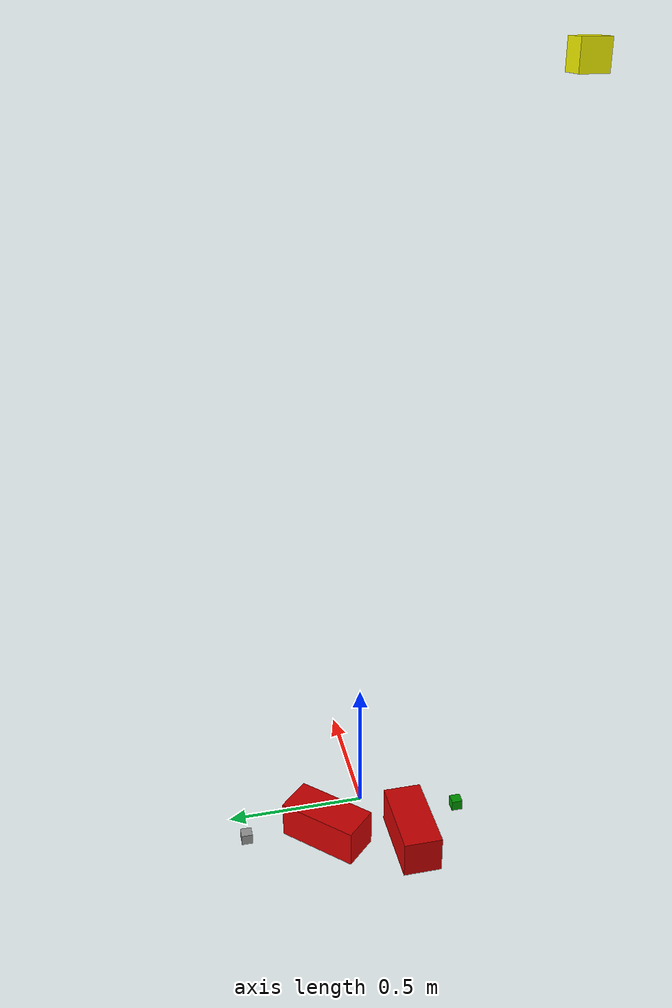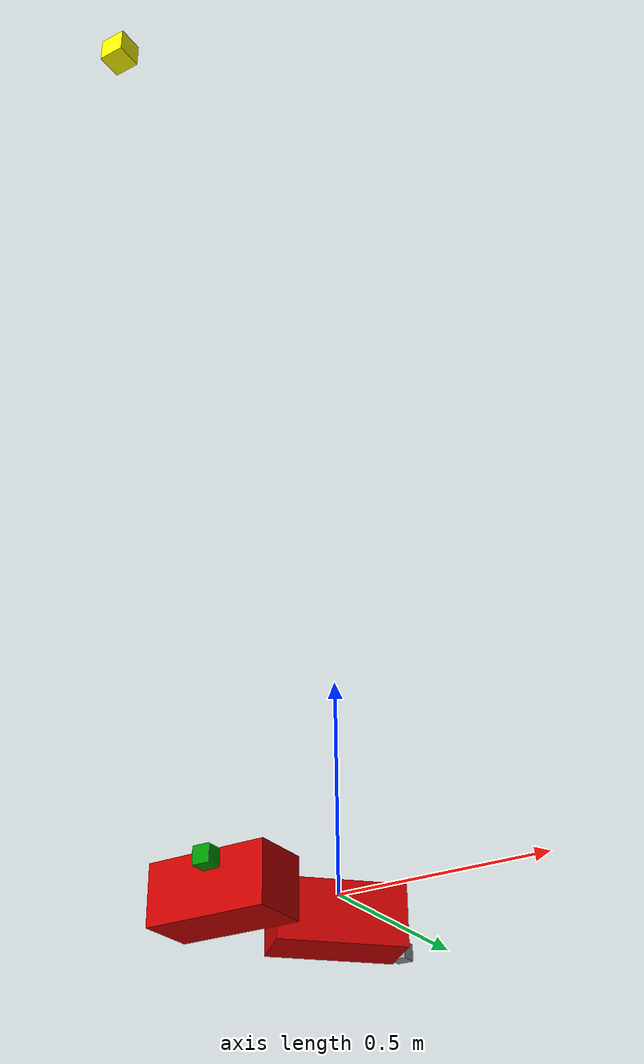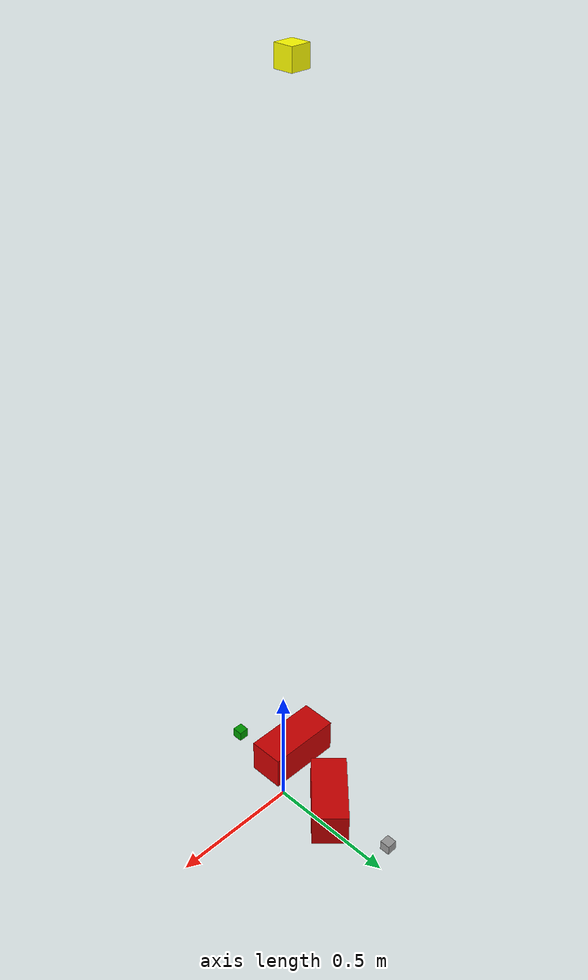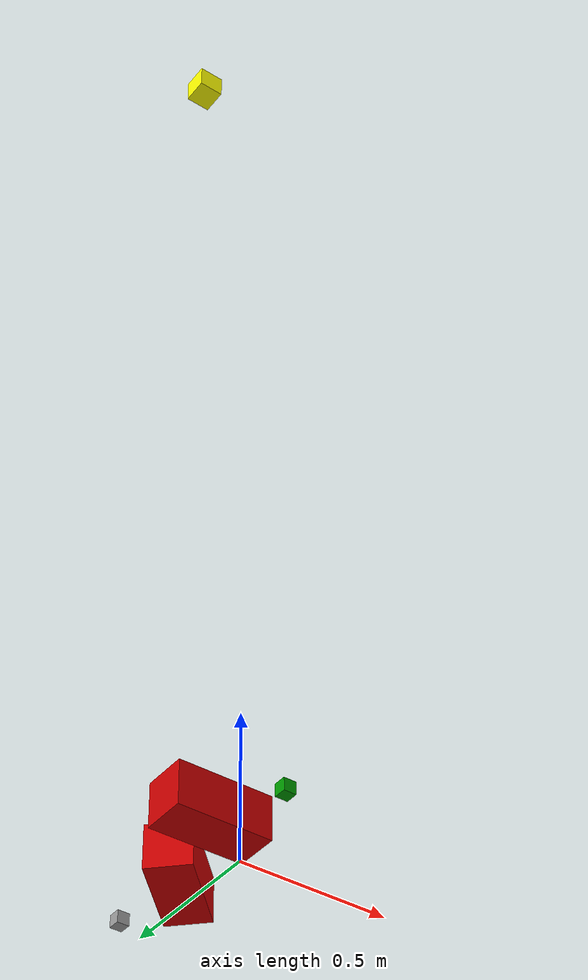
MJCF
<mujoco model="dual-panda v01">

    <!-- change this for different objects -->

    <option noslip_iterations="500" />
    <option solver="Newton" iterations="100" tolerance="1e-5"/>

    <option cone="elliptic"> </option>
    <option><flag multiccd="disable"/> </option>

    <default>
        <default class='torso'>
            <geom group='2' contype='0' conaffinity='0' rgba=".95 .99 .92 1" />
        </default>/ </default>

    <worldbody>

        <body name='torso' childclass='torso'>

            <body name='leftarm' pos='0 -0.4 0' euler='0 0 3.14'>
                <include file="franka_emika_panda/mjx_panda.xml" />
            </body>

        </body>
        <body name="object" pos="-0.4756487 -0.44454999  2.6048999" quat="0 0.7071068 0 0.7071068">
                <joint type="free" name="object_virtual_joint_10" damping="5" />
                <geom type="box" size="0.04 0.04 0.04 " rgba="1 1 0 1" friction="0.6 0.25 0.1" condim="6"/>
                <inertial pos="0 0 0" mass="0.366" diaginertia="0.000349 0.000349 0.000349"/>
        </body>

        <body name="target_0" pos="-0.1 -0.35 0.0" quat="0 0.70711 0.70711 0">
            <joint type="free" damping="0.007" name="free_joint_0" group="1"/>
            <geom name="target_0" pos="0 0 0" rgba="0 0.6 0 1" size="0.02 0.02 0.02" type="box"/>
        </body>

        <body name="target_1" pos="-0.1 0.45 0.0" quat="0 0.70711 0.70711 0">
            <geom name="target_1" pos="0 0 0" rgba="0.6 0.6 0.6 1" size="0.02 0.02 0.02" type="box" />
        </body>

        <body name="obstacle_0" pos="-0.1 0.15 0.0" quat="0.65328 -0.2706 0.65328 0.2706">
            <geom name="obstacle_0" pos="0 0 0" rgba="0.8 0 0 0" size="0.1 0.1" type="capsule" />
            <site name="obstacle_0" pos="0 0 0" rgba="0.8 0 0 1" size="0.07 0.07 0.15" type="box" />
        </body>

        <body name="obstacle_1" pos="-0.2 -0.15 0.0" quat="0.70711 0 0.70711 0">
            <geom name="obstacle_1" pos="0 0 0" rgba="0.8 0 0 0" size="0.1 0.1" type="capsule"  />
            <site name="obstacle_1" pos="0 0 0" rgba="0.8 0 0 1" size="0.07 0.07 0.15" type="box" />
        </body>

    </worldbody>

</mujoco>

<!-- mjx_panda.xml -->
<mujoco model="panda">
  <compiler angle="radian" meshdir="assets" autolimits="true"/>

  <default>
    <default class="panda">
      <material specular="0.5" shininess="0.25"/>
      <joint armature="0.1" damping="1" axis="0 0 1" range="-2.8973 2.8973"/>
      <general dyntype="none" biastype="affine" ctrlrange="-2.8973 2.8973" forcerange="-87 87"/>
      <position forcerange="-100 100"/>
      <default class="finger">
        <joint axis="0 1 0" type="slide" range="0 0.04"/>
      </default>

      <default class="visual">
        <geom type="mesh" contype="0" conaffinity="0" group="2"/>
      </default>
      <default class="collision">
        <geom group="3" type="mesh" contype="0" conaffinity="0"/>
        <default class="primitive_collision">
          <geom group="3" type="box" contype="0" conaffinity="0"
           condim="3" solimp="0.99 0.995 0.01" solref="0.01 1" friction="1 0.005 0.0001"/>
          <default class="fingertip_pad_collision_1">
            <geom type="box" size="0.011 0.0075 0.01" pos="0 0.0185 0.011"/>
          </default>
          <default class="fingertip_pad_collision_2">
            <geom type="box" size="0.011 0.0044 0.0019" pos="0 0.0068 0.0022"/>
          </default>
          <default class="fingertip_pad_collision_3">
            <geom type="box" size="0.00875 0.0035 0.01175" pos="0 0.0159 0.02835" quat="1 0.25 0 0"/>
          </default>
          <default class="fingertip_pad_collision_4">
            <geom type="box" size="0.00875 0.0076 0.00825" pos="0 0.00758 0.04525" conaffinity="3"/>
          </default>
        </default>
      </default>
    </default>
  </default>

  <asset>
    <material class="panda" name="white" rgba="1 1 1 1"/>
    <material class="panda" name="off_white" rgba="0.901961 0.921569 0.929412 1"/>
    <material class="panda" name="black" rgba="0.25 0.25 0.25 1"/>
    <material class="panda" name="green" rgba="0 1 0 1"/>
    <material class="panda" name="light_blue" rgba="0.039216 0.541176 0.780392 1"/>

    <!-- Collision meshes -->
    <mesh name="link0_c" file="link0.stl"/>
    <mesh name="link1_c" file="link1.stl"/>
    <mesh name="link2_c" file="link2.stl"/>
    <mesh name="link3_c" file="link3.stl"/>
    <mesh name="link4_c" file="link4.stl"/>
    <mesh name="link5_c0" file="link5_collision_0.obj"/>
    <mesh name="link5_c1" file="link5_collision_1.obj"/>
    <mesh name="link5_c2" file="link5_collision_2.obj"/>
    <mesh name="link6_c" file="link6.stl"/>
    <mesh name="link7_c" file="link7.stl"/>
    <mesh name="hand_c" file="hand.stl"/>

    <!-- Visual meshes -->
    <mesh file="link0_0.obj"/>
    <mesh file="link0_1.obj"/>
    <mesh file="link0_2.obj"/>
    <mesh file="link0_3.obj"/>
    <mesh file="link0_4.obj"/>
    <mesh file="link0_5.obj"/>
    <mesh file="link0_7.obj"/>
    <mesh file="link0_8.obj"/>
    <mesh file="link0_9.obj"/>
    <mesh file="link0_10.obj"/>
    <mesh file="link0_11.obj"/>
    <mesh file="link1.obj"/>
    <mesh file="link2.obj"/>
    <mesh file="link3_0.obj"/>
    <mesh file="link3_1.obj"/>
    <mesh file="link3_2.obj"/>
    <mesh file="link3_3.obj"/>
    <mesh file="link4_0.obj"/>
    <mesh file="link4_1.obj"/>
    <mesh file="link4_2.obj"/>
    <mesh file="link4_3.obj"/>
    <mesh file="link5_0.obj"/>
    <mesh file="link5_1.obj"/>
    <mesh file="link5_2.obj"/>
    <mesh file="link6_0.obj"/>
    <mesh file="link6_1.obj"/>
    <mesh file="link6_2.obj"/>
    <mesh file="link6_3.obj"/>
    <mesh file="link6_4.obj"/>
    <mesh file="link6_5.obj"/>
    <mesh file="link6_6.obj"/>
    <mesh file="link6_7.obj"/>
    <mesh file="link6_8.obj"/>
    <mesh file="link6_9.obj"/>
    <mesh file="link6_10.obj"/>
    <mesh file="link6_11.obj"/>
    <mesh file="link6_12.obj"/>
    <mesh file="link6_13.obj"/>
    <mesh file="link6_14.obj"/>
    <mesh file="link6_15.obj"/>
    <mesh file="link6_16.obj"/>
    <mesh file="link7_0.obj"/>
    <mesh file="link7_1.obj"/>
    <mesh file="link7_2.obj"/>
    <mesh file="link7_3.obj"/>
    <mesh file="link7_4.obj"/>
    <mesh file="link7_5.obj"/>
    <mesh file="link7_6.obj"/>
    <mesh file="link7_7.obj"/>
    <mesh file="hand_0.obj"/>
    <mesh file="hand_1.obj"/>
    <mesh file="hand_2.obj"/>
    <mesh file="hand_3.obj"/>
    <mesh file="hand_4.obj"/>
    <mesh file="finger_0.obj"/>
    <mesh file="finger_1.obj"/>
  </asset>

  <worldbody>
    <light name="top" pos="0 0 2" mode="trackcom"/>
    <body name="link0" childclass="panda" gravcomp="1">
      <inertial mass="0.629769" pos="-0.041018 -0.00014 0.049974"
        fullinertia="0.00315 0.00388 0.004285 8.2904e-7 0.00015 8.2299e-6" />
      <geom mesh="link0_0" material="off_white" class="visual"/>
      <geom mesh="link0_1" material="black" class="visual"/>
      <geom mesh="link0_2" material="off_white" class="visual"/>
      <geom mesh="link0_3" material="black" class="visual"/>
      <geom mesh="link0_4" material="off_white" class="visual"/>
      <geom mesh="link0_5" material="black" class="visual"/>
      <geom mesh="link0_7" material="white" class="visual"/>
      <geom mesh="link0_8" material="white" class="visual"/>
      <geom mesh="link0_9" material="black" class="visual"/>
      <geom mesh="link0_10" material="off_white" class="visual"/>
      <geom mesh="link0_11" material="white" class="visual"/>
      <geom mesh="link0_c" class="collision"/>
      <body name="link1" pos="0 0 0.333" gravcomp="1">
        <inertial mass="4.970684" pos="0.003875 0.002081 -0.04762"
          fullinertia="0.70337 0.70661 0.0091170 -0.00013900 0.0067720 0.019169"/>
        <joint name="joint1" damping="40"/>
        <geom material="white" mesh="link1" class="visual"/>
        <geom mesh="link1_c" class="collision"/>
        <body name="link2" quat="1 -1 0 0" gravcomp="1">
          <inertial mass="0.646926" pos="-0.003141 -0.02872 0.003495"
            fullinertia="0.0079620 2.8110e-2 2.5995e-2 -3.925e-3 1.0254e-2 7.04e-4"/>
          <joint name="joint2" range="-1.7628 1.7628" damping="40"/>
          <geom material="white" mesh="link2" class="visual"/>
          <geom mesh="link2_c" class="collision"/>
          <body name="link3" pos="0 -0.316 0" quat="1 1 0 0" gravcomp="1">
            <joint name="joint3" damping="40"/>
            <inertial mass="3.228604" pos="2.7518e-2 3.9252e-2 -6.6502e-2"
              fullinertia="3.7242e-2 3.6155e-2 1.083e-2 -4.761e-3 -1.1396e-2 -1.2805e-2"/>
            <geom mesh="link3_0" material="white" class="visual"/>
            <geom mesh="link3_1" material="white" class="visual"/>
            <geom mesh="link3_2" material="white" class="visual"/>
            <geom mesh="link3_3" material="black" class="visual"/>
            <geom mesh="link3_c" class="collision"/>
            <body name="link4" pos="0.0825 0 0" quat="1 1 0 0" gravcomp="1">
              <inertial mass="3.587895" pos="-5.317e-2 1.04419e-1 2.7454e-2"
                fullinertia="2.5853e-2 1.9552e-2 2.8323e-2 7.796e-3 -1.332e-3 8.641e-3"/>
              <joint name="joint4" range="-3.0718 -0.0698" damping="40"/>
              <geom mesh="link4_0" material="white" class="visual"/>
              <geom mesh="link4_1" material="white" class="visual"/>
              <geom mesh="link4_2" material="black" class="visual"/>
              <geom mesh="link4_3" material="white" class="visual"/>
              <geom mesh="link4_c" class="collision"/>
              <body name="link5" pos="-0.0825 0.384 0" quat="1 -1 0 0" gravcomp="1">
                <inertial mass="1.225946" pos="-1.1953e-2 4.1065e-2 -3.8437e-2"
                  fullinertia="3.5549e-2 2.9474e-2 8.627e-3 -2.117e-3 -4.037e-3 2.29e-4"/>
                <joint name="joint5" damping="2"/>
                <geom mesh="link5_0" material="black" class="visual"/>
                <geom mesh="link5_1" material="white" class="visual"/>
                <geom mesh="link5_2" material="white" class="visual"/>
                <geom mesh="link5_c0" class="collision"/>
                <geom mesh="link5_c1" class="collision"/>
                <geom mesh="link5_c2" class="collision"/>
                <body name="link6" quat="1 1 0 0" gravcomp="1">
                  <inertial mass="1.666555" pos="6.0149e-2 -1.4117e-2 -1.0517e-2"
                    fullinertia="1.964e-3 4.354e-3 5.433e-3 1.09e-4 -1.158e-3 3.41e-4"/>
                  <joint name="joint6" range="-0.0175 3.7525" damping="2"/>
                  <geom mesh="link6_0" material="off_white" class="visual"/>
                  <geom mesh="link6_1" material="white" class="visual"/>
                  <geom mesh="link6_2" material="black" class="visual"/>
                  <geom mesh="link6_3" material="white" class="visual"/>
                  <geom mesh="link6_4" material="white" class="visual"/>
                  <geom mesh="link6_5" material="white" class="visual"/>
                  <geom mesh="link6_6" material="white" class="visual"/>
                  <geom mesh="link6_7" material="light_blue" class="visual"/>
                  <geom mesh="link6_8" material="light_blue" class="visual"/>
                  <geom mesh="link6_9" material="black" class="visual"/>
                  <geom mesh="link6_10" material="black" class="visual"/>
                  <geom mesh="link6_11" material="white" class="visual"/>
                  <geom mesh="link6_12" material="green" class="visual"/>
                  <geom mesh="link6_13" material="white" class="visual"/>
                  <geom mesh="link6_14" material="black" class="visual"/>
                  <geom mesh="link6_15" material="black" class="visual"/>
                  <geom mesh="link6_16" material="white" class="visual"/>
                  <geom mesh="link6_c" class="collision"/>
                  <body name="link7" pos="0.088 0 0" quat="1 1 0 0" gravcomp="1">
                    <inertial mass="7.35522e-01" pos="1.0517e-2 -4.252e-3 6.1597e-2"
                      fullinertia="1.2516e-2 1.0027e-2 4.815e-3 -4.28e-4 -1.196e-3 -7.41e-4"/>
                    <joint name="joint7" damping="2"/>
                    <geom mesh="link7_0" material="white" class="visual"/>
                    <geom mesh="link7_1" material="black" class="visual"/>
                    <geom mesh="link7_2" material="black" class="visual"/>
                    <geom mesh="link7_3" material="black" class="visual"/>
                    <geom mesh="link7_4" material="black" class="visual"/>
                    <geom mesh="link7_5" material="black" class="visual"/>
                    <geom mesh="link7_6" material="black" class="visual"/>
                    <geom mesh="link7_7" material="white" class="visual"/>
                    <geom mesh="link7_c" class="collision"/>
                    <body name="hand" pos="0 0 0.107" quat="0.9238795 0 0 -0.3826834" gravcomp="1">
                      <inertial mass="0.73" pos="-0.01 0 0.03" diaginertia="0.001 0.0025 0.0017"/>
                      <geom mesh="hand_0" material="off_white" class="visual"/>
                      <geom mesh="hand_1" material="black" class="visual"/>
                      <geom mesh="hand_2" material="black" class="visual"/>
                      <geom mesh="hand_3" material="white" class="visual"/>
                      <geom mesh="hand_4" material="off_white" class="visual"/>
                      <geom mesh="hand_c" class="collision"/>
                      <geom name="hand_capsule" type="capsule"
                       class="collision" conaffinity="1" size="0.04 0.06"
                       quat="1 1 0 0" pos="0 0 0.03"/>
                      <site name="gripper" pos="0 0 0.1"/>
                    </body>
                  </body>
                </body>
              </body>
            </body>
          </body>
        </body>
      </body>
    </body>
  </worldbody>

  <actuator>
    <position class="panda" name="actuator1" joint="joint1" kp="1000" kv="20"
     ctrlrange="-2.8973 2.8973"/>
    <position class="panda" name="actuator2" joint="joint2" kp="1000" kv="20"
     ctrlrange="-1.7628 1.7628"/>
    <position class="panda" name="actuator3" joint="joint3" kp="750" kv="4"
     ctrlrange="-2.8973 2.8973"/>
    <position class="panda" name="actuator4" joint="joint4" kp="750" kv="4"
     ctrlrange="-3.0718 -0.0698"/>
    <position class="panda" name="actuator5" joint="joint5" kp="300" kv="2"
     forcerange="-12 12" ctrlrange="-2.8973 2.8973"/>
    <position class="panda" name="actuator6" joint="joint6" kp="300" kv="2" forcerange="-12 12"
      ctrlrange="-0.0175 3.7525"/>
  </actuator>
</mujoco>
